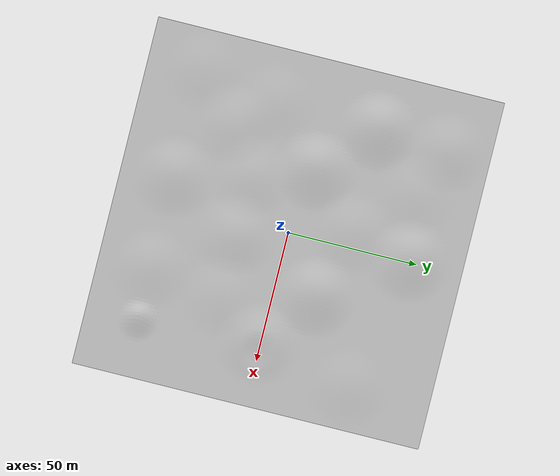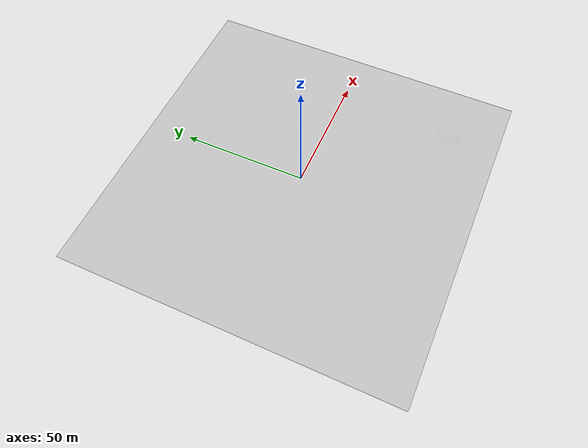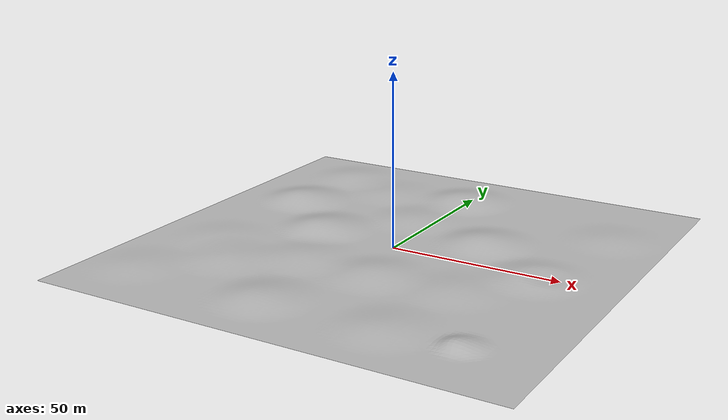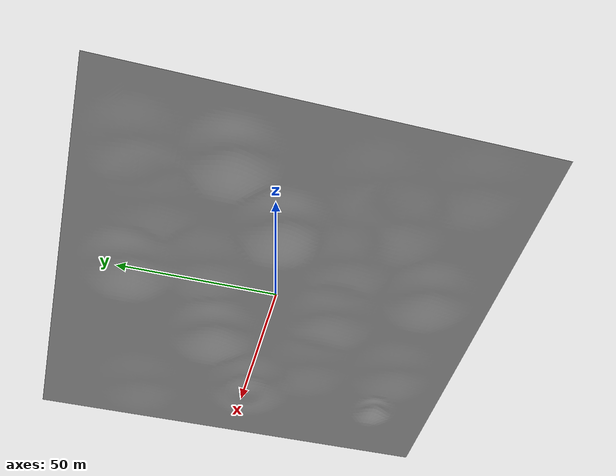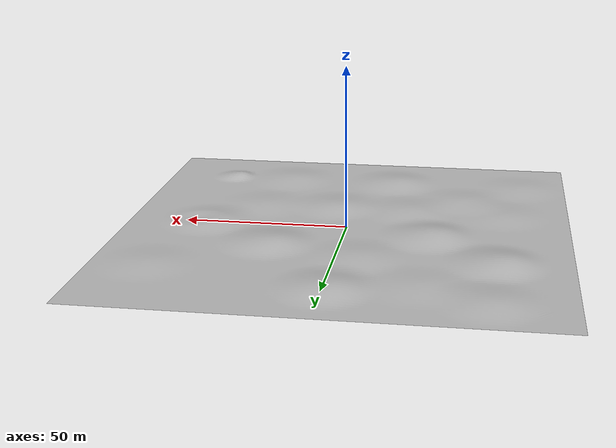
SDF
<?xml version="1.0" ?>
<sdf version="1.5">
  <model name="track_1">
    <pose>0 0 0 0 0 0</pose>
    <static>true</static>
    <link name="body">
      <visual name="visual">
        <geometry>
          <mesh><uri>model://track_1/media/track_1.dae</uri></mesh>
          <scale>0.5 0.5 0.5</scale>
        </geometry>
	      <material>
          <script>
            <uri>model://track_1/media/scripts</uri>
            <uri>model://track_1/media/Textures</uri>
            <name>RepeatedGrass/Diffuse</name>
          </script>
        </material>
      </visual>
      <collision name="collision">
        <geometry>
          <mesh><uri>model://track_1/media/track_1.dae</uri></mesh>
        </geometry>
      </collision>
    </link>
  </model>
</sdf>
